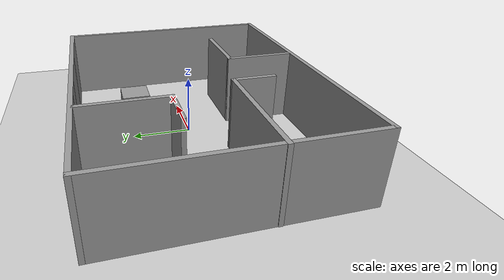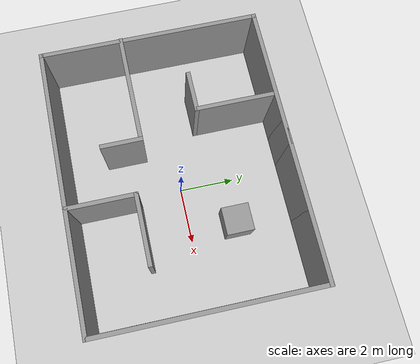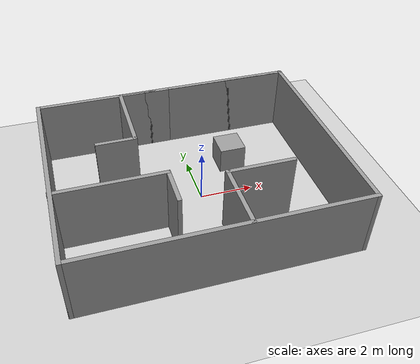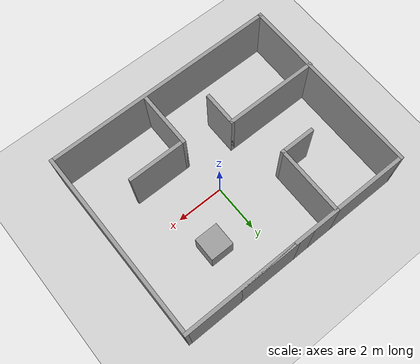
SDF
<sdf version="1.7">
 <world name="default">
  <light name="sun" type="directional">
   <pose>0 0 10 0 -0 0</pose>
   <diffuse>0.8 0.8 0.8 1</diffuse>
   <specular>0.2 0.2 0.2 1</specular>
   <attenuation>
    <range>1000</range>
    <constant>0.9</constant>
    <linear>0.01</linear>
    <quadratic>0.001</quadratic>
   </attenuation>
   <direction>-0.5 0.1 -0.9</direction>
   <spot><inner_angle>0</inner_angle><outer_angle>0</outer_angle><falloff>0</falloff></spot>
  </light>
  <model name="ground_plane">
   <static>1</static>
   <link name="link">
    <collision name="collision">
     <geometry><plane><normal>0 0 1</normal><size>100 100</size></plane></geometry>
     <surface>
      <contact><collide_bitmask>65535</collide_bitmask></contact>
      <friction><ode><mu>100</mu><mu2>50</mu2></ode></friction>
     </surface>
    </collision>
    <visual name="visual">
     <cast_shadows>0</cast_shadows>
     <geometry><plane><normal>0 0 1</normal><size>100 100</size></plane></geometry>
     <material>
      <script><uri>file://media/materials/scripts/gazebo.material</uri><name>Gazebo/Grey</name></script>
     </material>
    </visual>
   </link>
  </model>
  <gravity>0 0 -9.8</gravity>
  <magnetic_field>6e-06 2.3e-05 -4.2e-05</magnetic_field>
  <atmosphere type="adiabatic"/>
  <physics type="ode">
   <max_step_size>0.001</max_step_size>
   <real_time_factor>1</real_time_factor>
   <real_time_update_rate>1000</real_time_update_rate>
  </physics>
  <scene><ambient>0.4 0.4 0.4 1</ambient><background>0.7 0.7 0.7 1</background><shadows>1</shadows></scene>
  <audio><device>default</device></audio>
  <spherical_coordinates>
   <surface_model>EARTH_WGS84</surface_model>
   <latitude_deg>0</latitude_deg>
   <longitude_deg>0</longitude_deg>
   <elevation>0</elevation>
   <heading_deg>0</heading_deg>
  </spherical_coordinates>
  <model name="room">
   <pose>-0.018854 -0.066145 0 0 -0 0</pose>
   <link name="Wall_1">
    <collision name="Wall_1_Collision">
     <geometry><box><size>10 0.15 2.5</size></box></geometry>
     <pose>0 0 1.25 0 -0 0</pose>
    </collision>
    <visual name="Wall_1_Visual">
     <pose>0 0 1.25 0 -0 0</pose>
     <geometry><box><size>10 0.15 2.5</size></box></geometry>
     <material>
      <script><uri>file://media/materials/scripts/gazebo.material</uri><name>Gazebo/Grey</name></script>
      <ambient>1 1 1 1</ambient>
     </material>
     <meta><layer>0</layer></meta>
    </visual>
    <pose>-0.367664 3.925 0 0 -0 0</pose>
   </link>
   <link name="Wall_10">
    <collision name="Wall_10_Collision">
     <geometry><box><size>2 0.15 2.5</size></box></geometry>
     <pose>0 0 1.25 0 -0 0</pose>
    </collision>
    <visual name="Wall_10_Visual">
     <pose>0 0 1.25 0 -0 0</pose>
     <geometry><box><size>2 0.15 2.5</size></box></geometry>
     <material>
      <script><uri>file://media/materials/scripts/gazebo.material</uri><name>Gazebo/Grey</name></script>
      <ambient>1 1 1 1</ambient>
     </material>
     <meta><layer>0</layer></meta>
    </visual>
    <pose>-1.21766 3.925 0 0 -0 3.14159</pose>
   </link>
   <link name="Wall_11">
    <collision name="Wall_11_Collision">
     <geometry><box><size>3 0.15 2.5</size></box></geometry>
     <pose>0 0 1.25 0 -0 0</pose>
    </collision>
    <visual name="Wall_11_Visual">
     <pose>0 0 1.25 0 -0 0</pose>
     <geometry><box><size>3 0.15 2.5</size></box></geometry>
     <material>
      <script><uri>file://media/materials/scripts/gazebo.material</uri><name>Gazebo/Grey</name></script>
      <ambient>1 1 1 1</ambient>
     </material>
     <meta><layer>0</layer></meta>
    </visual>
    <pose>-2.14266 2.5 0 0 -0 -1.5708</pose>
   </link>
   <link name="Wall_12">
    <collision name="Wall_12_Collision">
     <geometry><box><size>1.5 0.15 2.5</size></box></geometry>
     <pose>0 0 1.25 0 -0 0</pose>
    </collision>
    <visual name="Wall_12_Visual">
     <pose>0 0 1.25 0 -0 0</pose>
     <geometry><box><size>1.5 0.15 2.5</size></box></geometry>
     <material>
      <script><uri>file://media/materials/scripts/gazebo.material</uri><name>Gazebo/Grey</name></script>
      <ambient>1 1 1 1</ambient>
     </material>
     <meta><layer>0</layer></meta>
    </visual>
    <pose>-2.81766 1.075 0 0 -0 3.14159</pose>
   </link>
   <link name="Wall_14">
    <collision name="Wall_14_Collision">
     <geometry><box><size>4 0.15 2.5</size></box></geometry>
     <pose>0 0 1.25 0 -0 0</pose>
    </collision>
    <visual name="Wall_14_Visual">
     <pose>0 0 1.25 0 -0 0</pose>
     <geometry><box><size>4 0.15 2.5</size></box></geometry>
     <material>
      <script><uri>file://media/materials/scripts/gazebo.material</uri><name>Gazebo/Grey</name></script>
      <ambient>1 1 1 1</ambient>
     </material>
     <meta><layer>0</layer></meta>
    </visual>
    <pose>-3.38681 -1.03068 0 0 -0 0</pose>
   </link>
   <link name="Wall_15">
    <collision name="Wall_15_Collision">
     <geometry><box><size>1.5 0.15 2.5</size></box></geometry>
     <pose>0 0 1.25 0 -0 0</pose>
    </collision>
    <visual name="Wall_15_Visual">
     <pose>0 0 1.25 0 -0 0</pose>
     <geometry><box><size>1.5 0.15 2.5</size></box></geometry>
     <material>
      <script><uri>file://media/materials/scripts/gazebo.material</uri><name>Gazebo/Grey</name></script>
      <ambient>1 1 1 1</ambient>
     </material>
     <meta><layer>0</layer></meta>
    </visual>
    <pose>-1.46181 -1.70568 0 0 -0 -1.5708</pose>
   </link>
   <link name="Wall_17">
    <collision name="Wall_17_Collision">
     <geometry><box><size>2.5 0.15 2.5</size></box></geometry>
     <pose>0 0 1.25 0 -0 0</pose>
    </collision>
    <visual name="Wall_17_Visual">
     <pose>0 0 1.25 0 -0 0</pose>
     <geometry><box><size>2.5 0.15 2.5</size></box></geometry>
     <material>
      <script><uri>file://media/materials/scripts/gazebo.material</uri><name>Gazebo/Grey</name></script>
      <ambient>1 1 1 1</ambient>
     </material>
     <meta><layer>0</layer></meta>
    </visual>
    <pose>0.409615 -2.72321 0 0 -0 1.5708</pose>
   </link>
   <link name="Wall_18">
    <collision name="Wall_18_Collision">
     <geometry><box><size>2.5 0.15 2.5</size></box></geometry>
     <pose>0 0 1.25 0 -0 0</pose>
    </collision>
    <visual name="Wall_18_Visual">
     <pose>0 0 1.25 0 -0 0</pose>
     <geometry><box><size>2.5 0.15 2.5</size></box></geometry>
     <material>
      <script><uri>file://media/materials/scripts/gazebo.material</uri><name>Gazebo/Grey</name></script>
      <ambient>1 1 1 1</ambient>
     </material>
     <meta><layer>0</layer></meta>
    </visual>
    <pose>1.58462 -1.54821 0 0 -0 0</pose>
   </link>
   <link name="Wall_6">
    <collision name="Wall_6_Collision">
     <geometry><box><size>8 0.15 2.5</size></box></geometry>
     <pose>0 0 1.25 0 -0 0</pose>
    </collision>
    <visual name="Wall_6_Visual">
     <pose>0 0 1.25 0 -0 0</pose>
     <geometry><box><size>8 0.15 2.5</size></box></geometry>
     <material>
      <script><uri>file://media/materials/scripts/gazebo.material</uri><name>Gazebo/Grey</name></script>
      <ambient>1 1 1 1</ambient>
     </material>
     <meta><layer>0</layer></meta>
    </visual>
    <pose>-5.29266 0 0 0 -0 -1.5708</pose>
   </link>
   <link name="Wall_7">
    <collision name="Wall_7_Collision">
     <geometry><box><size>10 0.15 2.5</size></box></geometry>
     <pose>0 0 1.25 0 -0 0</pose>
    </collision>
    <visual name="Wall_7_Visual">
     <pose>0 0 1.25 0 -0 0</pose>
     <geometry><box><size>10 0.15 2.5</size></box></geometry>
     <material>
      <script><uri>file://media/materials/scripts/gazebo.material</uri><name>Gazebo/Grey</name></script>
      <ambient>1 1 1 1</ambient>
     </material>
     <meta><layer>0</layer></meta>
    </visual>
    <pose>-0.367664 -3.925 0 0 -0 0</pose>
   </link>
   <link name="Wall_8">
    <collision name="Wall_8_Collision">
     <geometry><box><size>8 0.15 2.5</size></box></geometry>
     <pose>0 0 1.25 0 -0 0</pose>
    </collision>
    <visual name="Wall_8_Visual">
     <pose>0 0 1.25 0 -0 0</pose>
     <geometry><box><size>8 0.15 2.5</size></box></geometry>
     <material>
      <script><uri>file://media/materials/scripts/gazebo.material</uri><name>Gazebo/Grey</name></script>
      <ambient>1 1 1 1</ambient>
     </material>
     <meta><layer>0</layer></meta>
    </visual>
    <pose>4.55734 0 0 0 -0 1.5708</pose>
   </link>
   <link name="Wall_9">
    <collision name="Wall_9_Collision">
     <geometry><box><size>5 0.15 2.5</size></box></geometry>
     <pose>0 0 1.25 0 -0 0</pose>
    </collision>
    <visual name="Wall_9_Visual">
     <pose>0 0 1.25 0 -0 0</pose>
     <geometry><box><size>5 0.15 2.5</size></box></geometry>
     <material>
      <script><uri>file://media/materials/scripts/gazebo.material</uri><name>Gazebo/Grey</name></script>
      <ambient>1 1 1 1</ambient>
     </material>
     <meta><layer>0</layer></meta>
    </visual>
    <pose>2.13234 3.925 0 0 -0 3.14159</pose>
   </link>
   <static>1</static>
  </model>
  <model name="unit_box">
   <pose>1.64965 1.70919 0.5 0 -0 0</pose>
   <link name="link">
    <inertial>
     <mass>1</mass>
     <inertia>
      <ixx>0.166667</ixx>
      <ixy>0</ixy>
      <ixz>0</ixz>
      <iyy>0.166667</iyy>
      <iyz>0</iyz>
      <izz>0.166667</izz>
     </inertia>
    </inertial>
    <collision name="collision"><geometry><box><size>1 1 1</size></box></geometry></collision>
    <visual name="visual">
     <geometry><box><size>1 1 1</size></box></geometry>
     <material>
      <script><name>Gazebo/Grey</name><uri>file://media/materials/scripts/gazebo.material</uri></script>
     </material>
    </visual>
   </link>
  </model>
 </world>
</sdf>
